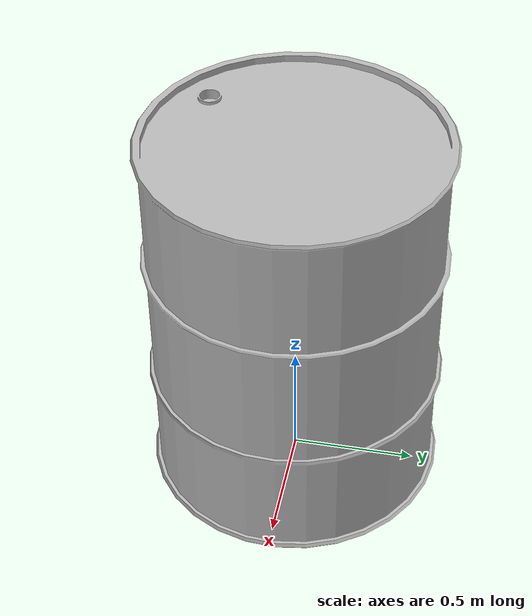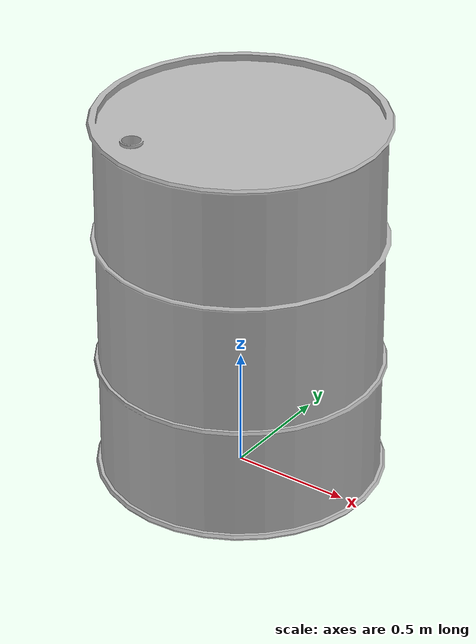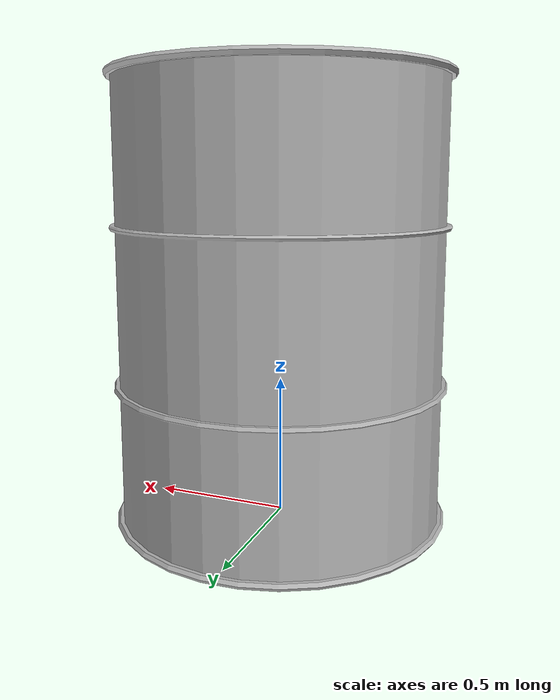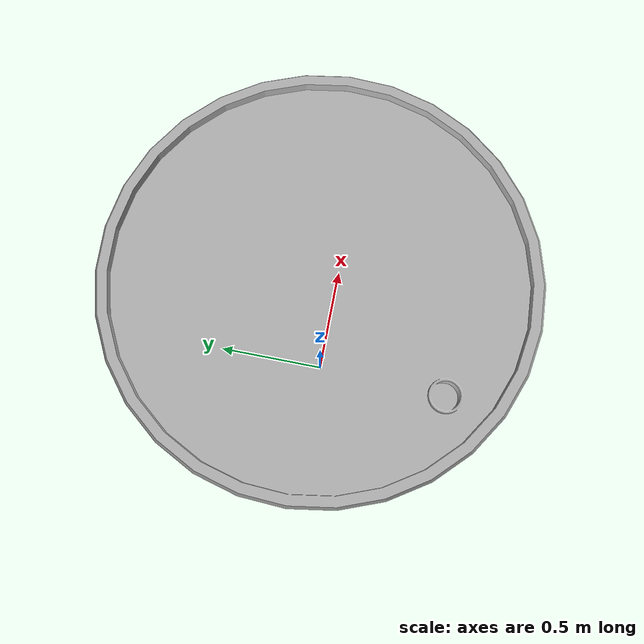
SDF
<?xml version="1.0"?>
<sdf version="1.4">
  <model name="barrel">
    <pose>0 0 0 0 0 0</pose>
    <static>true</static>
    <link name="barrel_link">
      <collision name="barrel_collision">
        <pose>0 0 0 0 0 0</pose>
        <geometry>
          <mesh>
            <uri>model://gazebo_worlds_cdt/models/barrel/meshes/barrel.dae</uri>
          </mesh>
        </geometry>
      </collision>
      <visual name="barrel_visual">
        <pose>0 0 0 0 0 0</pose>
        <geometry>
          <mesh>
            <uri>model://gazebo_worlds_cdt/models/barrel/meshes/barrel.dae</uri>
          </mesh>
        </geometry>
      </visual>
    </link>
  </model>
</sdf>
